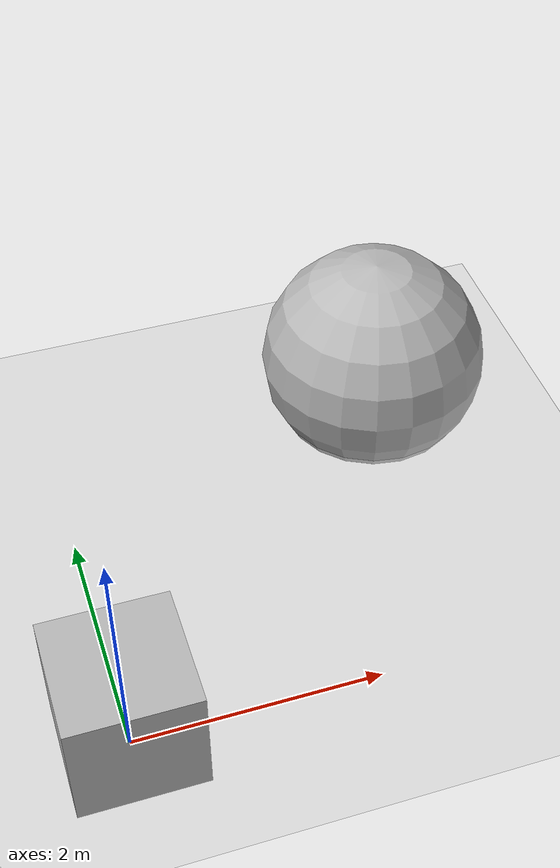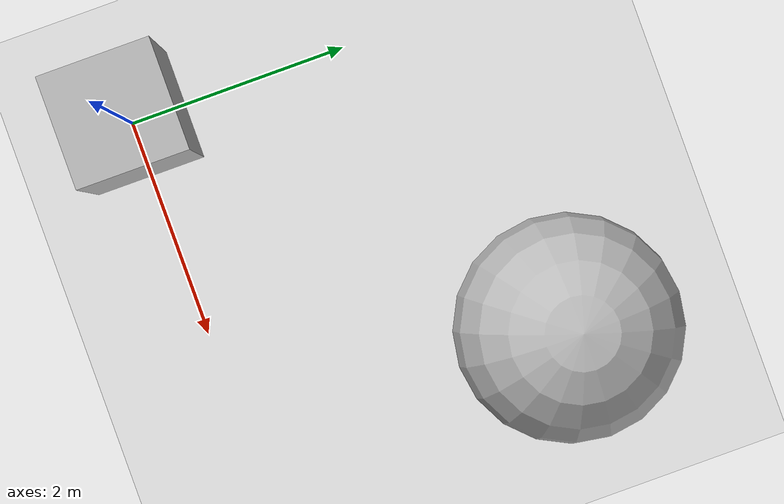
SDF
<?xml version="1.0"?>
<sdf version="1.4">
  <world name="default">
    <include>
      <uri>model://ground_plane</uri>
    </include>

    <include>
      <uri>model://sun</uri>
    </include>

    <model name="box">
      <pose>0 0 0.5 0 0 0</pose>
      <link name="link">
        <collision name="collision">
          <geometry>
            <box>
              <size>1 1 1</size>
            </box>
          </geometry>
        </collision>

        <visual name="visual">
          <geometry>
            <box>
              <size>1 1 1</size>
            </box>
          </geometry>
        </visual>
      </link>
      <plugin name="usbl_transceiver" filename="libtransceiverPlugin.so">
	<namespace>USBL</namespace>
	<transponder_device>transponder_manufacturer</transponder_device>
	<transponder_ID>1</transponder_ID>
	<transceiver_device>transceiver_manufacturer</transceiver_device>
	<transceiver_ID>168</transceiver_ID>
	<enable_ping_scheduler>false</enable_ping_scheduler>
	<transponder_attached_object>sphere</transponder_attached_object>
      </plugin>
    </model>

    <model name="sphere">
      <pose>3 3 0.5 0 0 0</pose>
      <link name="link">
        <collision name="collision">
          <geometry>
            <sphere>
              <radius>1</radius>
            </sphere>
          </geometry>
        </collision>

        <visual name="visual">
          <geometry>
            <sphere>
              <radius>1</radius>
            </sphere>
          </geometry>
        </visual>
      </link>
      <plugin name="usbl_transponder" filename="libtransponderPlugin.so">
	<namespace>USBL</namespace>
	<transponder_device>transponder_manufacturer</transponder_device>
	<transponder_ID>1</transponder_ID>
	<transceiver_device>transceiver_manufacturer</transceiver_device>
	<transceiver_ID>168</transceiver_ID>
	<mu>0</mu>
	<sigma>0.0</sigma>
      </plugin>
    </model>
  </world>
</sdf>
